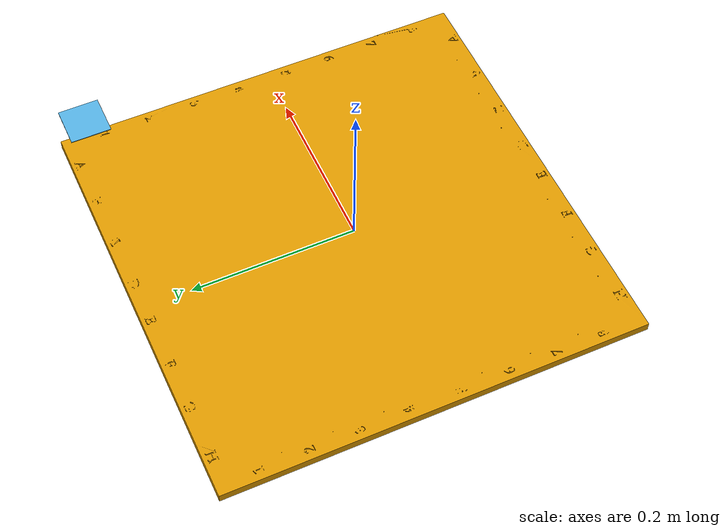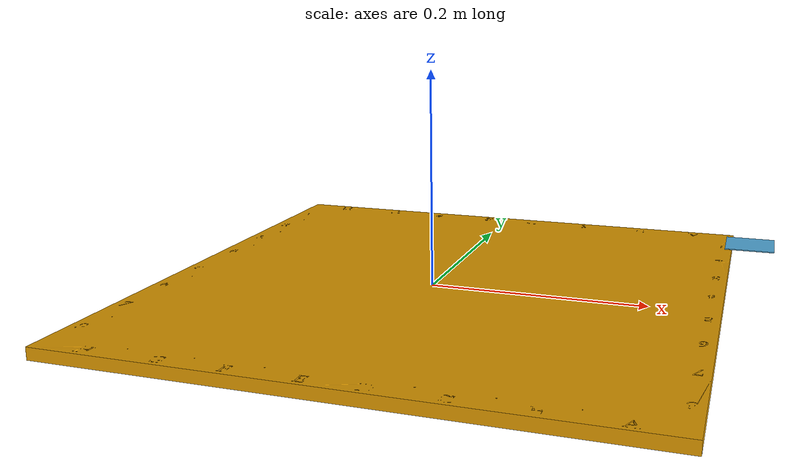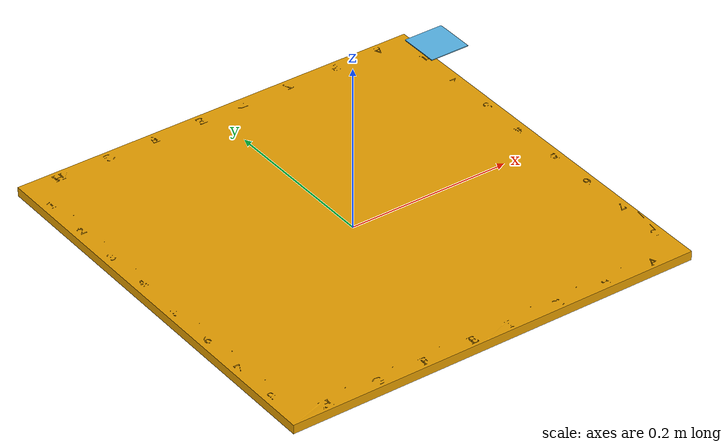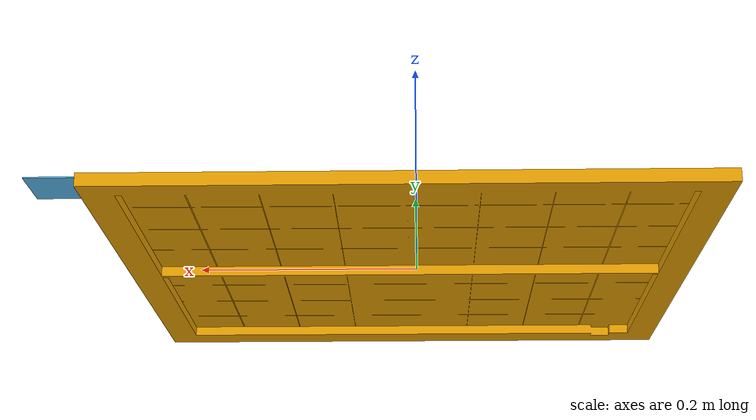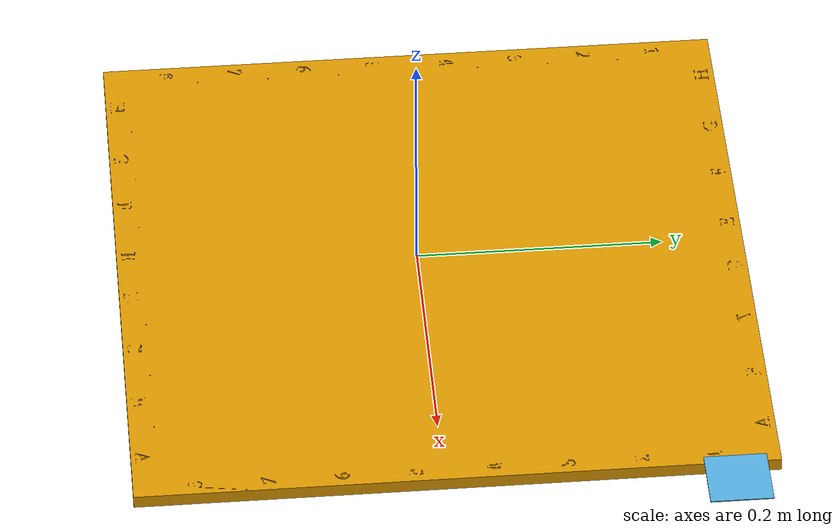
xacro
<?xml version="1.0"?>
<robot xmlns:xacro="http://wiki.ros.org/xacro" name="chessboard">

  <link name="chessboard_link">
    <inertial>
      <origin xyz="0.0068 0.0113 -0.00431" rpy="0 0 0"/>
      <mass value="1.5"/>
      <inertia ixx="0.03" ixy="0.0" ixz="0.0" iyy="0.03" iyz="0.0" izz="0.06"/>
    </inertial>

    <visual>
      <origin xyz="0 0 0" rpy="1.5708 0 0"/>
      <geometry>
        <mesh filename="package://robot_arms/meshes/scacchi/chessboard.obj" scale="1 1 1"/>
      </geometry>
    </visual>

    <collision>
      <origin xyz="0.0068 0.0113 -0.00431" rpy="0 0 0"/>
      <geometry>
        <box size="0.51 0.51 0.01102"/>
      </geometry>
    </collision>
  </link>

  <gazebo reference="chessboard_link">
    <mu1>1.0</mu1>
    <mu2>1.0</mu2>
  </gazebo>

  <link name="aruco_marker_link">
    <visual>
      <origin xyz="0 0 0.0005" rpy="0 0 0"/>
      <geometry>
        <box size="0.05 0.05 0.001"/>
      </geometry>
    </visual>
    <collision>
      <origin xyz="0 0 0.0005" rpy="0 0 0"/>
      <geometry>
        <box size="0.05 0.05 0.001"/>
      </geometry>
    </collision>
  </link>

  <joint name="chessboard_to_aruco" type="fixed">
    <parent link="chessboard_link"/>
    <child link="aruco_marker_link"/>
    <origin xyz="0.28 0.23 0.0012" rpy="0 0 0"/>
  </joint>

  <link name="a1_square_link"/>

  <joint name="aruco_to_a1" type="fixed">
    <parent link="aruco_marker_link"/>
    <child link="a1_square_link"/>
    <origin xyz="-0.0671 -0.01255 0" rpy="0 0 0"/>
  </joint>

  <gazebo reference="aruco_marker_link">
    <visual>
      <material>
        <diffuse>1 1 1 1</diffuse>
        <ambient>1 1 1 1</ambient>
        <emissive>0.1 0.1 0.1 1</emissive>
        <pbr>
          <metal>
            <albedo_map>file://$(find robot_arms)/materials/textures/aruco_0.png</albedo_map>
          </metal>
        </pbr>
      </material>
    </visual>
  </gazebo>

</robot>
